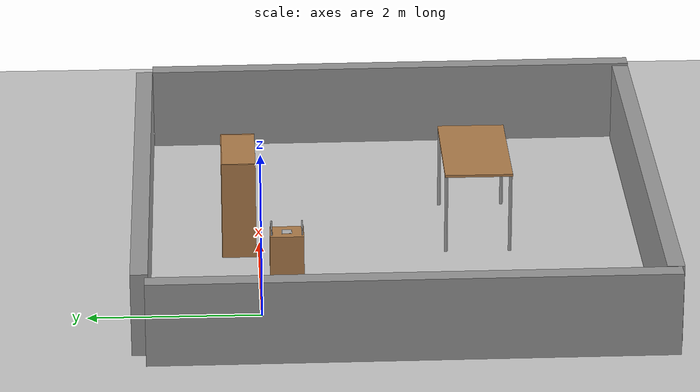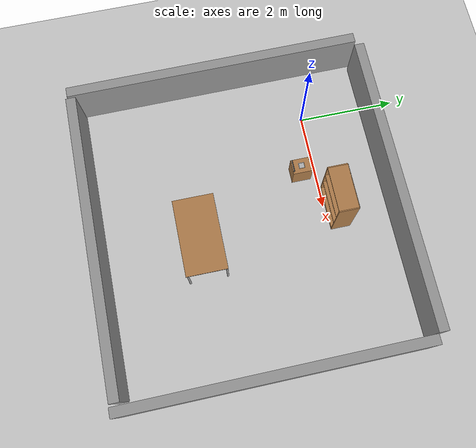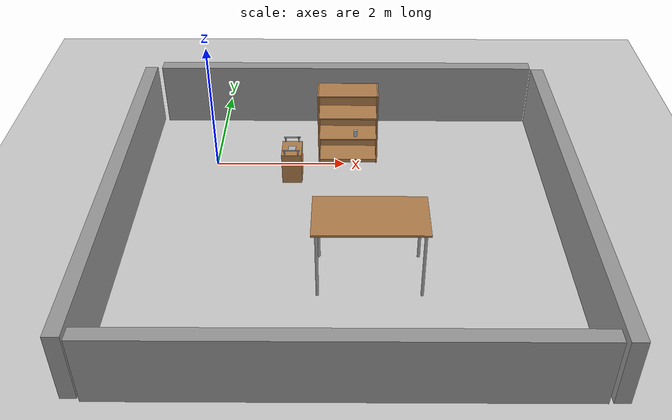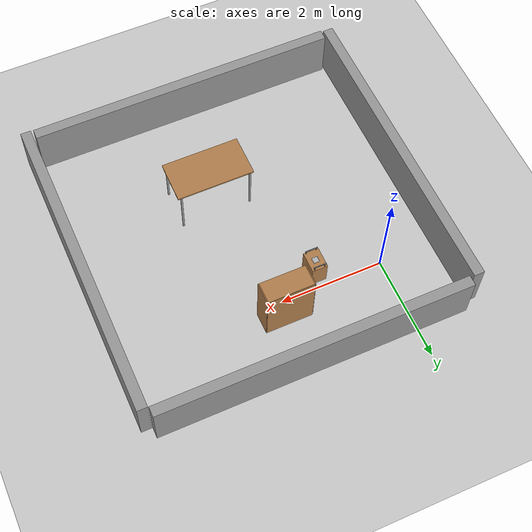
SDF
<sdf version="1.6">
 <world name="default">
  <light name="sun" type="directional">
   <pose>0 0 10 0 -0 0</pose>
   <diffuse>0.8 0.8 0.8 1</diffuse>
   <specular>0.2 0.2 0.2 1</specular>
   <attenuation>
    <range>1000</range>
    <constant>0.9</constant>
    <linear>0.01</linear>
    <quadratic>0.001</quadratic>
   </attenuation>
   <direction>-0.5 0.1 -0.9</direction>
  </light>
  <model name="ground_plane">
   <static>1</static>
   <link name="link">
    <collision name="collision">
     <geometry><plane><normal>0 0 1</normal><size>100 100</size></plane></geometry>
     <surface><friction><ode><mu>100</mu><mu2>50</mu2></ode></friction></surface>
    </collision>
    <visual name="visual">
     <cast_shadows>0</cast_shadows>
     <geometry><plane><normal>0 0 1</normal><size>100 100</size></plane></geometry>
     <material>
      <script><uri>file://media/materials/scripts/gazebo.material</uri><name>Gazebo/Grey</name></script>
     </material>
    </visual>
   </link>
  </model>
  <gravity>0 0 -9.8</gravity>
  <magnetic_field>6e-06 2.3e-05 -4.2e-05</magnetic_field>
  <atmosphere type="adiabatic"/>
  <physics name="default_physics" default="0" type="ode">
   <max_step_size>0.001</max_step_size>
   <real_time_factor>1</real_time_factor>
   <real_time_update_rate>1000</real_time_update_rate>
  </physics>
  <scene><ambient>0.4 0.4 0.4 1</ambient><background>0.7 0.7 0.7 1</background><shadows>1</shadows></scene>
  <audio><device>default</device></audio>
  <spherical_coordinates>
   <surface_model>EARTH_WGS84</surface_model>
   <latitude_deg>0</latitude_deg>
   <longitude_deg>0</longitude_deg>
   <elevation>0</elevation>
   <heading_deg>0</heading_deg>
  </spherical_coordinates>
  <model name="bookshelf">
   <static>1</static>
   <link name="link">
    <inertial><mass>1</mass></inertial>
    <collision name="back">
     <pose>0 0.005 0.6 0 -0 0</pose>
     <geometry><box><size>0.9 0.01 1.2</size></box></geometry>
    </collision>
    <visual name="visual1">
     <pose>0 0.005 0.6 0 -0 0</pose>
     <geometry><box><size>0.9 0.01 1.2</size></box></geometry>
     <material>
      <script><uri>file://media/materials/scripts/gazebo.material</uri><name>Gazebo/Wood</name></script>
     </material>
    </visual>
    <collision name="left_side">
     <pose>0.45 -0.195 0.6 0 -0 0</pose>
     <geometry><box><size>0.02 0.4 1.2</size></box></geometry>
    </collision>
    <visual name="visual2">
     <pose>0.45 -0.195 0.6 0 -0 0</pose>
     <geometry><box><size>0.02 0.4 1.2</size></box></geometry>
     <material>
      <script><uri>file://media/materials/scripts/gazebo.material</uri><name>Gazebo/Wood</name></script>
     </material>
    </visual>
    <collision name="right_side">
     <pose>-0.45 -0.195 0.6 0 -0 0</pose>
     <geometry><box><size>0.02 0.4 1.2</size></box></geometry>
    </collision>
    <visual name="visual3">
     <pose>-0.45 -0.195 0.6 0 -0 0</pose>
     <geometry><box><size>0.02 0.4 1.2</size></box></geometry>
     <material>
      <script><uri>file://media/materials/scripts/gazebo.material</uri><name>Gazebo/Wood</name></script>
     </material>
    </visual>
    <collision name="bottom">
     <pose>0 -0.195 0.03 0 -0 0</pose>
     <geometry><box><size>0.88 0.4 0.06</size></box></geometry>
    </collision>
    <visual name="visual4">
     <pose>0 -0.195 0.03 0 -0 0</pose>
     <geometry><box><size>0.88 0.4 0.06</size></box></geometry>
     <material>
      <script><uri>file://media/materials/scripts/gazebo.material</uri><name>Gazebo/Wood</name></script>
     </material>
    </visual>
    <collision name="top">
     <pose>0 -0.195 1.19 0 -0 0</pose>
     <geometry><box><size>0.88 0.4 0.02</size></box></geometry>
    </collision>
    <visual name="visual5">
     <pose>0 -0.195 1.19 0 -0 0</pose>
     <geometry><box><size>0.88 0.4 0.02</size></box></geometry>
     <material>
      <script><uri>file://media/materials/scripts/gazebo.material</uri><name>Gazebo/Wood</name></script>
     </material>
    </visual>
    <collision name="low_shelf">
     <pose>0 -0.195 0.43 0 -0 0</pose>
     <geometry><box><size>0.88 0.4 0.02</size></box></geometry>
    </collision>
    <visual name="visual6">
     <pose>0 -0.195 0.43 0 -0 0</pose>
     <geometry><box><size>0.88 0.4 0.02</size></box></geometry>
     <material>
      <script><uri>file://media/materials/scripts/gazebo.material</uri><name>Gazebo/Wood</name></script>
     </material>
    </visual>
    <collision name="high_shelf">
     <pose>0 -0.195 0.8 0 -0 0</pose>
     <geometry><box><size>0.88 0.4 0.02</size></box></geometry>
    </collision>
    <visual name="visual7">
     <pose>0 -0.195 0.8 0 -0 0</pose>
     <geometry><box><size>0.88 0.4 0.02</size></box></geometry>
     <material>
      <script><uri>file://media/materials/scripts/gazebo.material</uri><name>Gazebo/Wood</name></script>
     </material>
    </visual>
   </link>
   <pose>2.05078 0.433882 0 0 -0 0</pose>
  </model>
  <model name="box_with_handles">
   <static>1</static>
   <link name="box_with_handles">
    <inertial>
     <pose>0 0 0.2 0 -0 0</pose>
     <inertia><ixx>1</ixx><ixy>0</ixy><ixz>0</ixz><iyy>1</iyy><iyz>0</iyz><izz>1</izz></inertia>
     <mass>2</mass>
    </inertial>
    <collision name="box">
     <pose>0 0 0.25 0 -0 0</pose>
     <geometry><box><size>0.3 0.4 0.5</size></box></geometry>
    </collision>
    <visual name="visual1">
     <pose>0 0 0.25 0 -0 0</pose>
     <geometry><box><size>0.3 0.4 0.5</size></box></geometry>
     <material>
      <script><uri>file://media/materials/scripts/gazebo.material</uri><name>Gazebo/Wood</name></script>
     </material>
    </visual>
    <collision name="handle_left_1">
     <pose>0.1 0.18 0.54 0 -0 0</pose>
     <geometry><cylinder><radius>0.01</radius><length>0.08</length></cylinder></geometry>
    </collision>
    <visual name="handle_left_1">
     <pose>0.1 0.18 0.54 0 -0 0</pose>
     <geometry><cylinder><radius>0.01</radius><length>0.08</length></cylinder></geometry>
     <material>
      <script><uri>file://media/materials/scripts/gazebo.material</uri><name>Gazebo/Grey</name></script>
     </material>
    </visual>
    <collision name="handle_left_2">
     <pose>-0.1 0.18 0.54 0 -0 0</pose>
     <geometry><cylinder><radius>0.01</radius><length>0.08</length></cylinder></geometry>
    </collision>
    <visual name="handle_left_2">
     <pose>-0.1 0.18 0.54 0 -0 0</pose>
     <geometry><cylinder><radius>0.01</radius><length>0.08</length></cylinder></geometry>
     <material>
      <script><uri>file://media/materials/scripts/gazebo.material</uri><name>Gazebo/Grey</name></script>
     </material>
    </visual>
    <collision name="handle_left_3">
     <pose>0 0.18 0.58 0 1.57 0</pose>
     <geometry><cylinder><radius>0.01</radius><length>0.25</length></cylinder></geometry>
    </collision>
    <visual name="handle_left_3">
     <pose>0 0.18 0.58 0 1.57 0</pose>
     <geometry><cylinder><radius>0.01</radius><length>0.25</length></cylinder></geometry>
     <material>
      <script><uri>file://media/materials/scripts/gazebo.material</uri><name>Gazebo/Grey</name></script>
     </material>
    </visual>
    <collision name="handle_left_1">
     <pose>0.1 -0.18 0.54 0 -0 0</pose>
     <geometry><cylinder><radius>0.01</radius><length>0.08</length></cylinder></geometry>
    </collision>
    <visual name="handle_right_1">
     <pose>0.1 -0.18 0.54 0 -0 0</pose>
     <geometry><cylinder><radius>0.01</radius><length>0.08</length></cylinder></geometry>
     <material>
      <script><uri>file://media/materials/scripts/gazebo.material</uri><name>Gazebo/Grey</name></script>
     </material>
    </visual>
    <collision name="handle_right_2">
     <pose>-0.1 -0.18 0.54 0 -0 0</pose>
     <geometry><cylinder><radius>0.01</radius><length>0.08</length></cylinder></geometry>
    </collision>
    <visual name="handle_right_2">
     <pose>-0.1 -0.18 0.54 0 -0 0</pose>
     <geometry><cylinder><radius>0.01</radius><length>0.08</length></cylinder></geometry>
     <material>
      <script><uri>file://media/materials/scripts/gazebo.material</uri><name>Gazebo/Grey</name></script>
     </material>
    </visual>
    <collision name="handle_right_3">
     <pose>0 -0.18 0.58 0 1.57 0</pose>
     <geometry><cylinder><radius>0.01</radius><length>0.25</length></cylinder></geometry>
    </collision>
    <visual name="handle_right_3">
     <pose>0 -0.18 0.58 0 1.57 0</pose>
     <geometry><cylinder><radius>0.01</radius><length>0.25</length></cylinder></geometry>
     <material>
      <script><uri>file://media/materials/scripts/gazebo.material</uri><name>Gazebo/Grey</name></script>
     </material>
    </visual>
    <visual name="visual2">
     <pose>0 0 0.5005 0 -0 0</pose>
     <geometry><box><size>0.12 0.12 0.001</size></box></geometry>
     <material>
      <script><uri>file://media/materials/scripts/gazebo.material</uri><name>Gazebo/White</name></script>
     </material>
    </visual>
    <visual name="visual3">
     <pose>0 0 0.501 0 -0 1.57</pose>
     <geometry><box><size>0.105 0.105 0.001</size></box></geometry>
     <material>
      <script>
       <uri>package://box_with_handles/material/scripts</uri>
       <uri>package://box_with_handles/material/textures</uri>
       <name>Aruco/aruco_marker_original_582</name>
      </script>
     </material>
    </visual>
    <velocity_decay><linear>0</linear><angular>0</angular></velocity_decay>
   </link>
   <pose>1.20406 -0.314476 0 0 -0 0</pose>
  </model>
  <model name="table">
   <static>1</static>
   <link name="link">
    <collision name="surface">
     <pose>0 0 1 0 -0 0</pose>
     <geometry><box><size>1.5 0.8 0.03</size></box></geometry>
     <surface><friction><ode><mu>0.6</mu><mu2>0.6</mu2></ode></friction></surface>
    </collision>
    <visual name="visual1">
     <pose>0 0 1 0 -0 0</pose>
     <geometry><box><size>1.5 0.8 0.03</size></box></geometry>
     <material>
      <script><uri>file://media/materials/scripts/gazebo.material</uri><name>Gazebo/Wood</name></script>
     </material>
    </visual>
    <collision name="front_left_leg">
     <pose>0.68 0.38 0.5 0 -0 0</pose>
     <geometry><cylinder><radius>0.02</radius><length>1</length></cylinder></geometry>
    </collision>
    <visual name="front_left_leg">
     <pose>0.68 0.38 0.5 0 -0 0</pose>
     <geometry><cylinder><radius>0.02</radius><length>1</length></cylinder></geometry>
     <material>
      <script><uri>file://media/materials/scripts/gazebo.material</uri><name>Gazebo/Grey</name></script>
     </material>
    </visual>
    <collision name="front_right_leg">
     <pose>0.68 -0.38 0.5 0 -0 0</pose>
     <geometry><cylinder><radius>0.02</radius><length>1</length></cylinder></geometry>
    </collision>
    <visual name="front_right_leg">
     <pose>0.68 -0.38 0.5 0 -0 0</pose>
     <geometry><cylinder><radius>0.02</radius><length>1</length></cylinder></geometry>
     <material>
      <script><uri>file://media/materials/scripts/gazebo.material</uri><name>Gazebo/Grey</name></script>
     </material>
    </visual>
    <collision name="back_right_leg">
     <pose>-0.68 -0.38 0.5 0 -0 0</pose>
     <geometry><cylinder><radius>0.02</radius><length>1</length></cylinder></geometry>
    </collision>
    <visual name="back_right_leg">
     <pose>-0.68 -0.38 0.5 0 -0 0</pose>
     <geometry><cylinder><radius>0.02</radius><length>1</length></cylinder></geometry>
     <material>
      <script><uri>file://media/materials/scripts/gazebo.material</uri><name>Gazebo/Grey</name></script>
     </material>
    </visual>
    <collision name="back_left_leg">
     <pose>-0.68 0.38 0.5 0 -0 0</pose>
     <geometry><cylinder><radius>0.02</radius><length>1</length></cylinder></geometry>
    </collision>
    <visual name="back_left_leg">
     <pose>-0.68 0.38 0.5 0 -0 0</pose>
     <geometry><cylinder><radius>0.02</radius><length>1</length></cylinder></geometry>
     <material>
      <script><uri>file://media/materials/scripts/gazebo.material</uri><name>Gazebo/Grey</name></script>
     </material>
    </visual>
   </link>
   <pose>2.34123 -2.59423 0 0 -0 0</pose>
  </model>
  <model name="wall">
   <link name="link">
    <inertial>
     <mass>1</mass>
     <inertia>
      <ixx>0.166667</ixx>
      <ixy>0</ixy>
      <ixz>0</ixz>
      <iyy>0.166667</iyy>
      <iyz>0</iyz>
      <izz>0.166667</izz>
     </inertia>
    </inertial>
    <pose>3.76484 -1.6194 0 0 -0 0</pose>
    <visual name="visual">
     <geometry><box><size>6 0.2 1</size></box></geometry>
     <material>
      <script><name>Gazebo/Grey</name><uri>file://media/materials/scripts/gazebo.material</uri></script>
      <shader type="vertex"><normal_map>__default__</normal_map></shader>
      <ambient>0.3 0.3 0.3 1</ambient>
      <diffuse>0.7 0.7 0.7 1</diffuse>
      <specular>0.01 0.01 0.01 1</specular>
      <emissive>0 0 0 1</emissive>
     </material>
    </visual>
    <collision name="collision">
     <geometry><box><size>6 0.2 1</size></box></geometry>
     <surface>
      <friction>
       <ode><mu>1</mu><mu2>1</mu2><fdir1>0 0 0</fdir1><slip1>0</slip1><slip2>0</slip2></ode>
       <torsional>
        <coefficient>1</coefficient>
        <patch_radius>0</patch_radius>
        <surface_radius>0</surface_radius>
        <use_patch_radius>1</use_patch_radius>
        <ode><slip>0</slip></ode>
       </torsional>
      </friction>
      <bounce><restitution_coefficient>0</restitution_coefficient><threshold>1e+06</threshold></bounce>
      <contact>
       <collide_without_contact>0</collide_without_contact>
       <collide_without_contact_bitmask>1</collide_without_contact_bitmask>
       <collide_bitmask>1</collide_bitmask>
       <ode>
        <soft_cfm>0</soft_cfm>
        <soft_erp>0.2</soft_erp>
        <kp>1e+13</kp>
        <kd>1</kd>
        <max_vel>0.01</max_vel>
        <min_depth>0</min_depth>
       </ode>
       <bullet>
        <split_impulse>1</split_impulse>
        <split_impulse_penetration_threshold>-0.01</split_impulse_penetration_threshold>
        <soft_cfm>0</soft_cfm>
        <soft_erp>0.2</soft_erp>
        <kp>1e+13</kp>
        <kd>1</kd>
       </bullet>
      </contact>
     </surface>
    </collision>
   </link>
   <static>1</static>
   <pose>-1.75 -3 0.489213 0 -0 0</pose>
  </model>
  <model name="wall_clone_clone">
   <link name="link">
    <inertial>
     <mass>1</mass>
     <inertia>
      <ixx>0.166667</ixx>
      <ixy>0</ixy>
      <ixz>0</ixz>
      <iyy>0.166667</iyy>
      <iyz>0</iyz>
      <izz>0.166667</izz>
     </inertia>
    </inertial>
    <pose>3.76484 -1.6194 0 0 -0 0</pose>
    <visual name="visual">
     <geometry><box><size>6 0.2 1</size></box></geometry>
     <material>
      <script><name>Gazebo/Grey</name><uri>file://media/materials/scripts/gazebo.material</uri></script>
      <shader type="vertex"><normal_map>__default__</normal_map></shader>
      <ambient>0.3 0.3 0.3 1</ambient>
      <diffuse>0.7 0.7 0.7 1</diffuse>
      <specular>0.01 0.01 0.01 1</specular>
      <emissive>0 0 0 1</emissive>
     </material>
    </visual>
    <collision name="collision">
     <geometry><box><size>6 0.2 1</size></box></geometry>
     <surface>
      <friction>
       <ode><mu>1</mu><mu2>1</mu2><fdir1>0 0 0</fdir1><slip1>0</slip1><slip2>0</slip2></ode>
       <torsional>
        <coefficient>1</coefficient>
        <patch_radius>0</patch_radius>
        <surface_radius>0</surface_radius>
        <use_patch_radius>1</use_patch_radius>
        <ode><slip>0</slip></ode>
       </torsional>
      </friction>
      <bounce><restitution_coefficient>0</restitution_coefficient><threshold>1e+06</threshold></bounce>
      <contact>
       <collide_without_contact>0</collide_without_contact>
       <collide_without_contact_bitmask>1</collide_without_contact_bitmask>
       <collide_bitmask>1</collide_bitmask>
       <ode>
        <soft_cfm>0</soft_cfm>
        <soft_erp>0.2</soft_erp>
        <kp>1e+13</kp>
        <kd>1</kd>
        <max_vel>0.01</max_vel>
        <min_depth>0</min_depth>
       </ode>
       <bullet>
        <split_impulse>1</split_impulse>
        <split_impulse_penetration_threshold>-0.01</split_impulse_penetration_threshold>
        <soft_cfm>0</soft_cfm>
        <soft_erp>0.2</soft_erp>
        <kp>1e+13</kp>
        <kd>1</kd>
       </bullet>
      </contact>
     </surface>
    </collision>
   </link>
   <static>1</static>
   <pose>3.55 -5.5 0.501195 1.1e-05 0.001607 1.57713</pose>
  </model>
  <model name="wall_clone">
   <link name="link">
    <inertial>
     <mass>1</mass>
     <inertia>
      <ixx>0.166667</ixx>
      <ixy>0</ixy>
      <ixz>0</ixz>
      <iyy>0.166667</iyy>
      <iyz>0</iyz>
      <izz>0.166667</izz>
     </inertia>
    </inertial>
    <pose>3.76484 -1.6194 0 0 -0 0</pose>
    <visual name="visual">
     <geometry><box><size>6 0.2 1</size></box></geometry>
     <material>
      <script><name>Gazebo/Grey</name><uri>file://media/materials/scripts/gazebo.material</uri></script>
      <shader type="vertex"><normal_map>__default__</normal_map></shader>
      <ambient>0.3 0.3 0.3 1</ambient>
      <diffuse>0.7 0.7 0.7 1</diffuse>
      <specular>0.01 0.01 0.01 1</specular>
      <emissive>0 0 0 1</emissive>
     </material>
    </visual>
    <collision name="collision">
     <geometry><box><size>6 0.2 1</size></box></geometry>
     <surface>
      <friction>
       <ode><mu>1</mu><mu2>1</mu2><fdir1>0 0 0</fdir1><slip1>0</slip1><slip2>0</slip2></ode>
       <torsional>
        <coefficient>1</coefficient>
        <patch_radius>0</patch_radius>
        <surface_radius>0</surface_radius>
        <use_patch_radius>1</use_patch_radius>
        <ode><slip>0</slip></ode>
       </torsional>
      </friction>
      <bounce><restitution_coefficient>0</restitution_coefficient><threshold>1e+06</threshold></bounce>
      <contact>
       <collide_without_contact>0</collide_without_contact>
       <collide_without_contact_bitmask>1</collide_without_contact_bitmask>
       <collide_bitmask>1</collide_bitmask>
       <ode>
        <soft_cfm>0</soft_cfm>
        <soft_erp>0.2</soft_erp>
        <kp>1e+13</kp>
        <kd>1</kd>
        <max_vel>0.01</max_vel>
        <min_depth>0</min_depth>
       </ode>
       <bullet>
        <split_impulse>1</split_impulse>
        <split_impulse_penetration_threshold>-0.01</split_impulse_penetration_threshold>
        <soft_cfm>0</soft_cfm>
        <soft_erp>0.2</soft_erp>
        <kp>1e+13</kp>
        <kd>1</kd>
       </bullet>
      </contact>
     </surface>
    </collision>
   </link>
   <static>1</static>
   <pose>-1.75 3 0.501307 0 -0 0</pose>
  </model>
  <model name="wall_clone_clone_0">
   <link name="link">
    <inertial>
     <mass>1</mass>
     <inertia>
      <ixx>0.166667</ixx>
      <ixy>0</ixy>
      <ixz>0</ixz>
      <iyy>0.166667</iyy>
      <iyz>0</iyz>
      <izz>0.166667</izz>
     </inertia>
    </inertial>
    <pose>3.76484 -1.6194 0 0 -0 0</pose>
    <visual name="visual">
     <geometry><box><size>6 0.2 1</size></box></geometry>
     <material>
      <script><name>Gazebo/Grey</name><uri>file://media/materials/scripts/gazebo.material</uri></script>
      <shader type="vertex"><normal_map>__default__</normal_map></shader>
      <ambient>0.3 0.3 0.3 1</ambient>
      <diffuse>0.7 0.7 0.7 1</diffuse>
      <specular>0.01 0.01 0.01 1</specular>
      <emissive>0 0 0 1</emissive>
     </material>
    </visual>
    <collision name="collision">
     <geometry><box><size>6 0.2 1</size></box></geometry>
     <surface>
      <friction>
       <ode><mu>1</mu><mu2>1</mu2><fdir1>0 0 0</fdir1><slip1>0</slip1><slip2>0</slip2></ode>
       <torsional>
        <coefficient>1</coefficient>
        <patch_radius>0</patch_radius>
        <surface_radius>0</surface_radius>
        <use_patch_radius>1</use_patch_radius>
        <ode><slip>0</slip></ode>
       </torsional>
      </friction>
      <bounce><restitution_coefficient>0</restitution_coefficient><threshold>1e+06</threshold></bounce>
      <contact>
       <collide_without_contact>0</collide_without_contact>
       <collide_without_contact_bitmask>1</collide_without_contact_bitmask>
       <collide_bitmask>1</collide_bitmask>
       <ode>
        <soft_cfm>0</soft_cfm>
        <soft_erp>0.2</soft_erp>
        <kp>1e+13</kp>
        <kd>1</kd>
        <max_vel>0.01</max_vel>
        <min_depth>0</min_depth>
       </ode>
       <bullet>
        <split_impulse>1</split_impulse>
        <split_impulse_penetration_threshold>-0.01</split_impulse_penetration_threshold>
        <soft_cfm>0</soft_cfm>
        <soft_erp>0.2</soft_erp>
        <kp>1e+13</kp>
        <kd>1</kd>
       </bullet>
      </contact>
     </surface>
    </collision>
   </link>
   <static>1</static>
   <pose>-2.7355 -5.4576 0.501305 0 -0 1.577</pose>
  </model>
  <model name="aruco_cube_0">
   <static>0</static>
   <link name="link">
    <inertial>
     <mass>0.05</mass>
     <inertia>
      <ixx>5.2083e-05</ixx>
      <ixy>0</ixy>
      <ixz>0</ixz>
      <iyy>5.2083e-05</iyy>
      <iyz>0</iyz>
      <izz>2.0833e-05</izz>
     </inertia>
    </inertial>
    <collision name="colision">
     <geometry><box><size>0.05 0.05 0.1</size></box></geometry>
     <surface>
      <friction><ode><mu>30</mu><mu2>30</mu2><fdir1>0 0 0</fdir1></ode></friction>
      <contact><ode><kp>1e+06</kp><kd>100</kd><min_depth>0.0025</min_depth><max_vel>1</max_vel></ode></contact>
     </surface>
    </collision>
    <visual name="visual1">
     <geometry>
      <mesh><uri>model://aruco_cube_1/meshes/aruco_cube_5cm.dae</uri><scale>1 1 2</scale></mesh>
     </geometry>
    </visual>
    <velocity_decay><linear>0</linear><angular>0</angular></velocity_decay>
   </link>
   <pose>2.16959 0.133128 0.488493 -0.001418 0.000161 0</pose>
  </model>
 </world>
</sdf>
